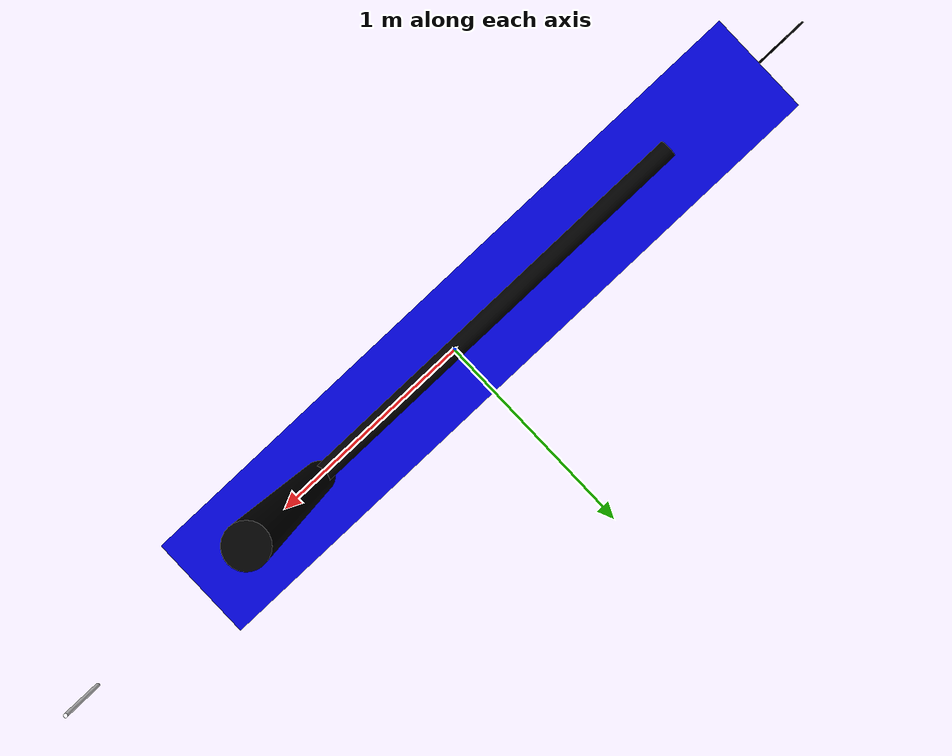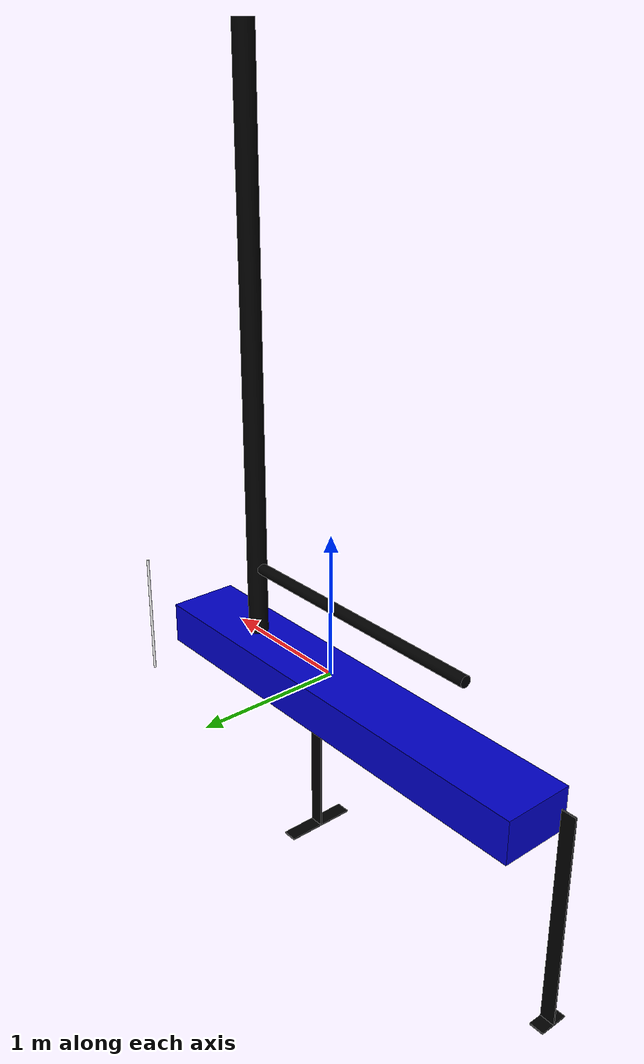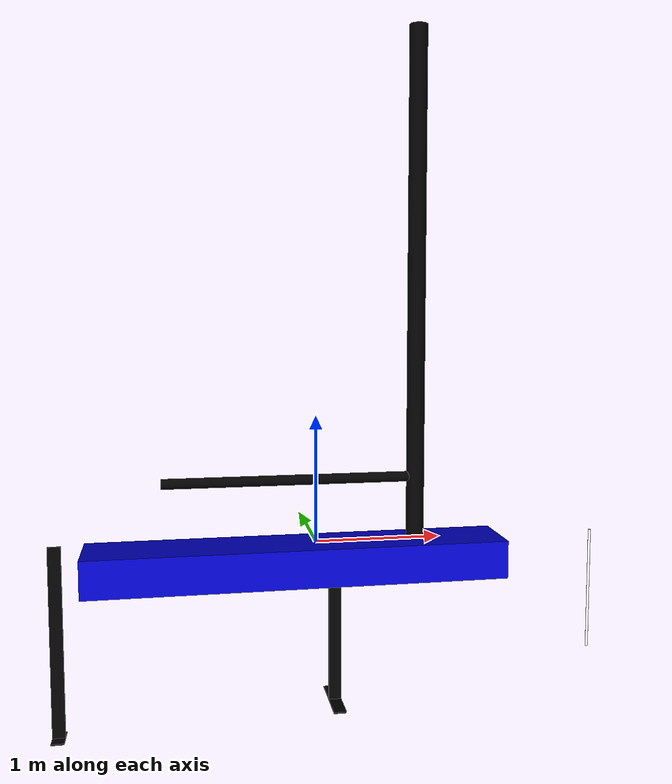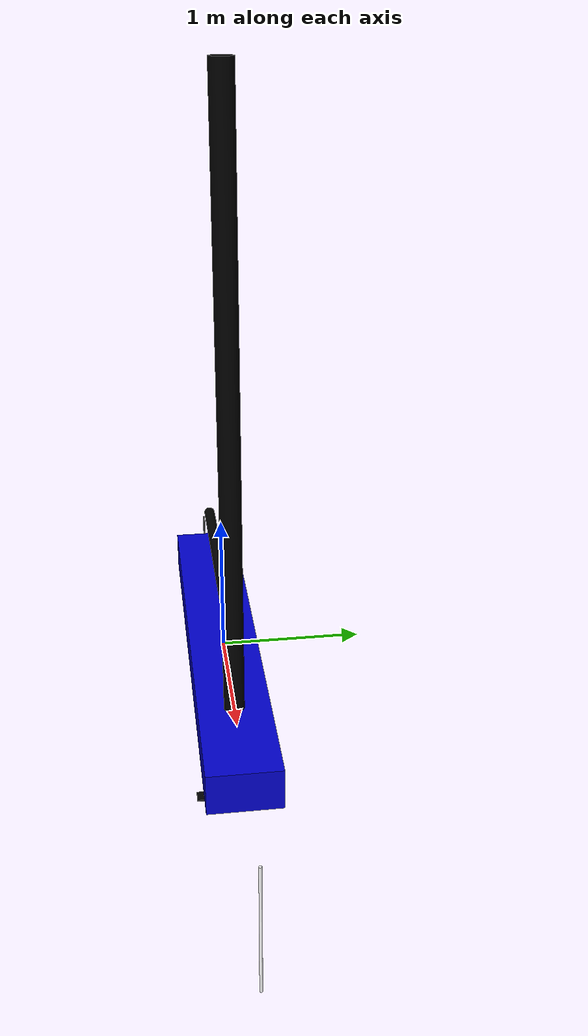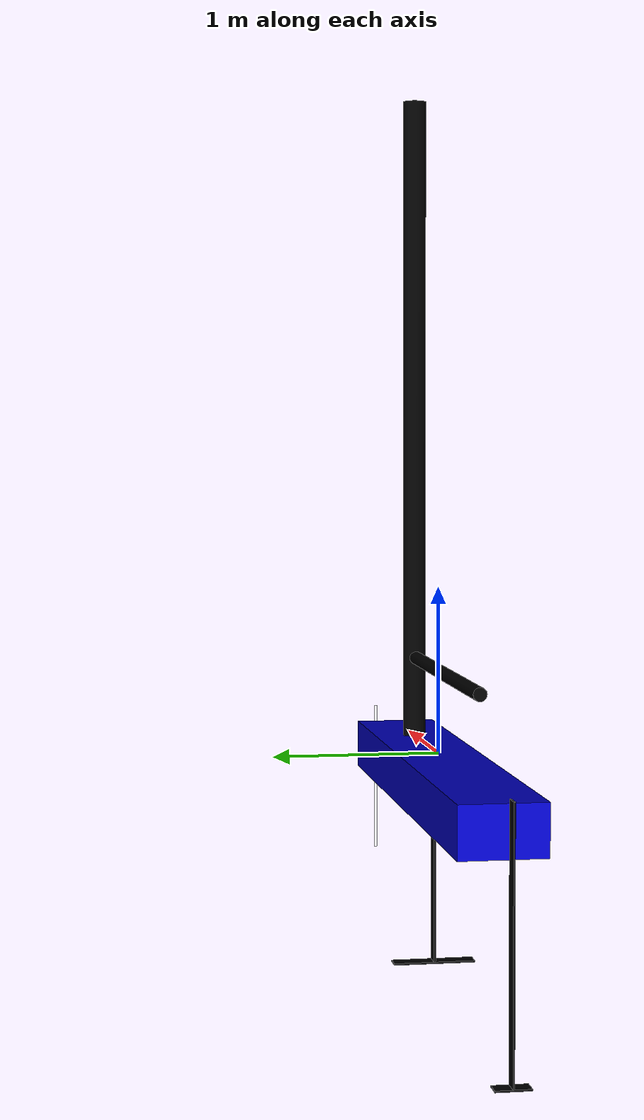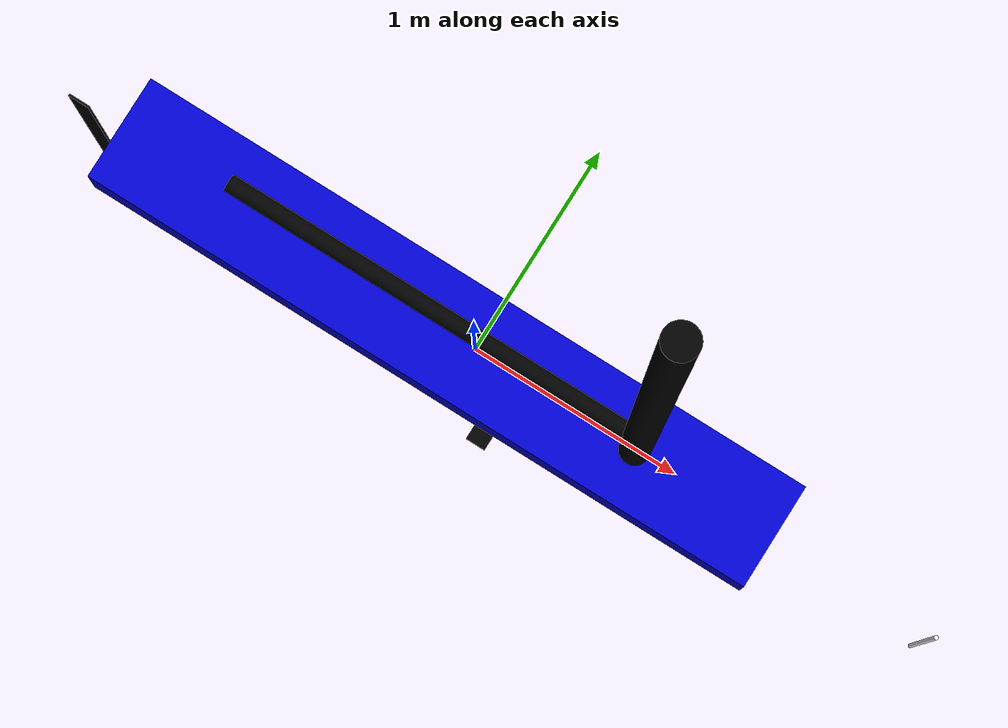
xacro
<?xml version="1.0"?>
<robot name="teti" xmlns:xacro="http://ros.org/wiki/xacro">

  <xacro:property name="thin"     value=".01" />
  <xacro:property name="wide"     value=".1" />

  <xacro:property name="hull_len"   value="3.3" />
  <xacro:property name="hull_w"     value=".5" />
  <xacro:property name="hull_h"     value=".3" />

  <xacro:property name="rudder_h"   value="1.5" />
  <xacro:property name="main_h"     value="1" />

  <xacro:property name="wand_h"     value="1" />
  <xacro:property name="wand_r"     value=".01" />

  <xacro:property name="mast_h"     value="4" />
  <xacro:property name="mast_r"     value=".07" />

  <xacro:property name="boma_l"     value="2" />
  <xacro:property name="boma_r"     value=".04" />

  <material name="blue">
    <color rgba="0 0 0.8 1"/>
  </material>

  <material name="black">
    <color rgba="0 0 0 1"/>
  </material>

  <material name="white">
    <color rgba="1 1 1 1"/>
  </material>

  <xacro:macro name="default_inertial" params="mass">
    <inertial>
      <mass value="${mass}" />
      <inertia ixx="1.0" ixy="0.0" ixz="0.0" iyy="1.0" iyz="0.0" izz="1.0" />
    </inertial>
  </xacro:macro>

  <link name = "base_link">
  </link>

  <link name="boat_cm">
    <visual>
      <origin xyz="-.15 0 ${-hull_h/2}" rpy="0 0 0" />
      <geometry>
        <box size="${hull_len} ${hull_w} ${hull_h}"/>
      </geometry>
      <material name="blue"/>
    </visual>
    <collision>
      <origin xyz="-.15 0 ${-hull_h/2}" rpy="0 0 0" />
      <geometry>
       <box size="${hull_len} ${hull_w} ${hull_h}"/>
      </geometry>
    </collision>
    <xacro:default_inertial mass="10"/>
  </link>

  <joint name="boat_base" type="fixed">
    <parent link="base_link"/>
    <child link="boat_cm"/>
    <origin xyz="0 0 0"/>
  </joint>

  <xacro:macro name="keel" params="name h">
    <link name="${name}">
      <visual>
        <origin xyz="0 0 ${-h/2}" rpy="0 0 0" />
        <geometry>
           <box size=" ${wide} ${thin} ${h}"/>
        </geometry>
        <material name="black"/>
      </visual>
      <collision>
        <origin xyz="0 0 ${-h/2}" rpy="0 0 0" />
        <geometry>
           <box size="${wide} ${thin} ${h}"/>
        </geometry>
      </collision>
      <xacro:default_inertial mass="1"/>
    </link>
  </xacro:macro>

  <xacro:keel name="rudder" h="${rudder_h}"/>

  <joint name="rudder_joint" type="revolute">
    <axis xyz="0 0 1"/>
    <limit effort="1000.0" lower="${-pi/4}" upper="${pi/4}" velocity="0.5"/>
    <origin rpy="0 0 0" xyz="-2 0 .05"/>
    <parent link="boat_cm"/>
    <child link="rudder"/>
  </joint>

  <xacro:keel name="main_k" h="${main_h}"/>

  <joint name="main_k_joint" type="fixed">
    <parent link="boat_cm"/>
    <child link="main_k"/>
    <origin xyz=".15 0 ${-hull_h}"/>
  </joint>

  <xacro:macro name="foil" params="parent parent_h w">
    <link name="${parent}_foil">
      <visual>
        <origin xyz="0 0 ${-thin/2}" rpy="0 0 0" />
        <geometry>
           <box size="${wide} ${w} ${thin}"/>
        </geometry>
        <material name="black"/>
      </visual>
      <collision>
        <origin xyz="0 0 ${-thin/2}" rpy="0 0 0" />
        <geometry>
           <box size="${wide} ${w} ${thin}"/>
        </geometry>
      </collision>
      <xacro:default_inertial mass="1"/>
    </link>

    <joint name="${parent}_foil_joint" type="fixed">
      <parent link="${parent}"/>
      <child link="${parent}_foil"/>
      <origin xyz="0 0 ${-parent_h}"/>
    </joint>
  </xacro:macro>

  <xacro:foil parent="rudder" parent_h="${rudder_h}" w=".2"/>

  <xacro:foil parent="main_k" parent_h="${main_h}" w=".5"/>

  <link name="wand">
    <visual>
      <origin xyz="0 0 ${-wand_h/2}" rpy="0 0 0" />
      <geometry>
         <cylinder radius="${wand_r}" length="${wand_h}"/>
      </geometry>
      <material name="white"/>
    </visual>
    <collision>
      <origin xyz="0 0 ${-wand_h/2}" rpy="0 0 0" />
      <geometry>
         <cylinder radius="${wand_r}" length="${wand_h}"/>
      </geometry>
    </collision>
    <xacro:default_inertial mass="1"/>
  </link>

  <joint name="wand_joint" type="revolute">
    <axis xyz="0 1 0"/>
    <limit effort="1000.0" lower="0" upper="${pi/2}" velocity="0.5"/>
    <origin rpy="0 0 0" xyz="2.3 0 0"/>
    <parent link="boat_cm"/>
    <child link="wand"/>
  </joint>

  <link name="mast">
    <visual>
      <origin xyz="0 0 ${mast_h/2}" rpy="0 0 0" />
      <geometry>
         <cylinder radius="${mast_r}" length="${mast_h}"/>
      </geometry>
      <material name="black"/>
    </visual>
    <collision>
      <origin xyz="0 0 ${mast_h/2}" rpy="0 0 0" />
      <geometry>
         <cylinder radius="${mast_r}" length="${mast_h}"/>
      </geometry>
    </collision>
    <xacro:default_inertial mass="1"/>
  </link>

  <joint name="mast_joint" type="revolute">
    <axis xyz="0 0 1"/>
    <limit effort="1000.0" lower="${-pi/4}" upper="${pi/4}" velocity="0.5"/>
    <origin rpy="0 0 0" xyz=".8 0 0"/>
    <parent link="boat_cm"/>
    <child link="mast"/>
  </joint>

  <link name="boma">
    <visual>
      <origin xyz="${-boma_l/2} 0 0" rpy="0 ${pi/2} 0" />
      <geometry>
         <cylinder radius="${boma_r}" length="${boma_l}"/>
      </geometry>
      <material name="black"/>
    </visual>
    <collision>
      <origin xyz="${-boma_l/2} 0 0" rpy="0 ${pi/2} 0" />
      <geometry>
         <cylinder radius="${boma_r}" length="${boma_l}"/>
      </geometry>
      <material name="black"/>
    </collision>
    <xacro:default_inertial mass="1"/>
  </link>

  <joint name="boma_joint" type="fixed">
    <parent link="mast"/>
    <child link="boma"/>
    <origin xyz="0 0 .5"/>
  </joint>

</robot>
